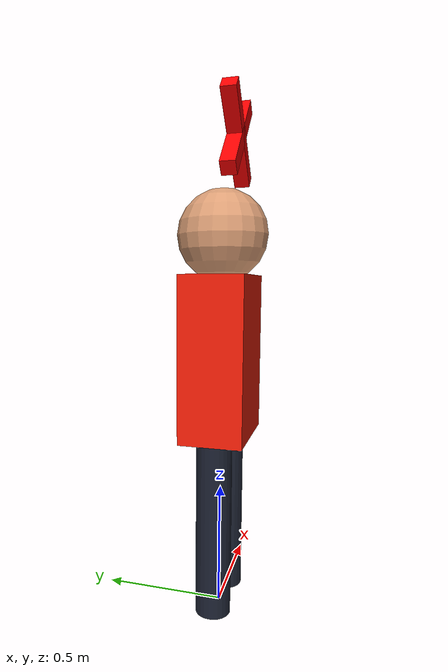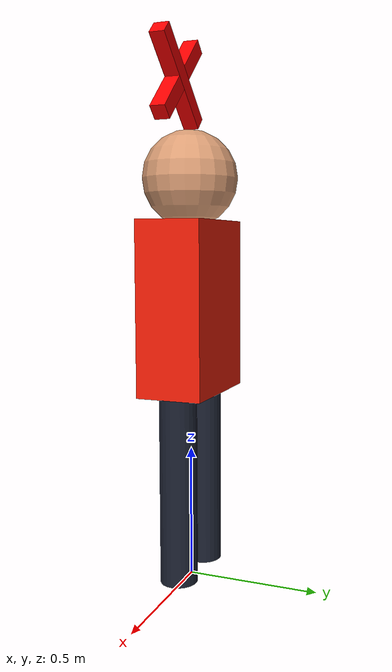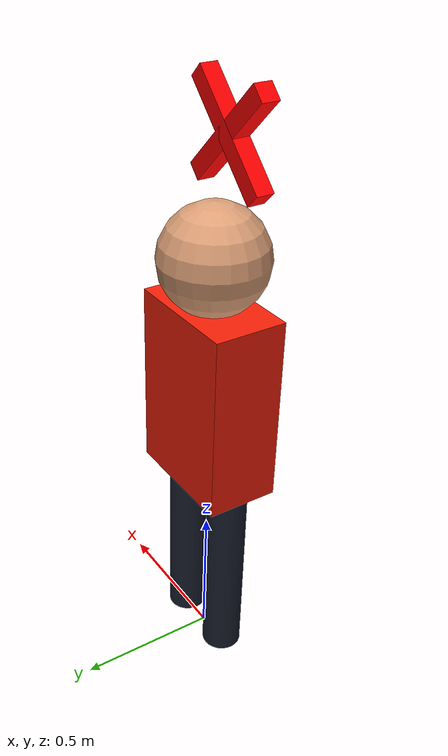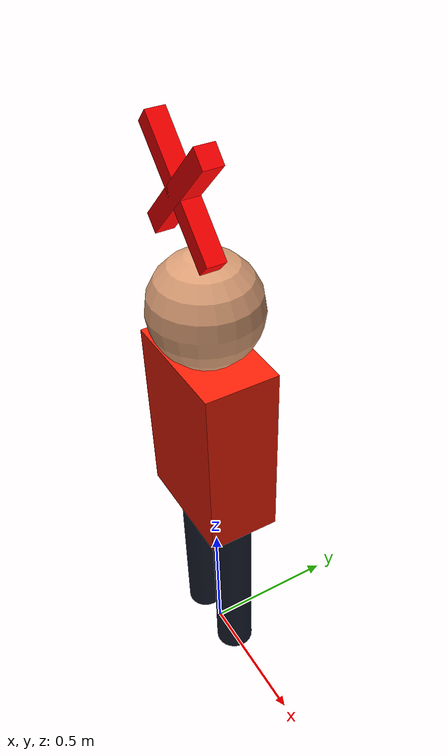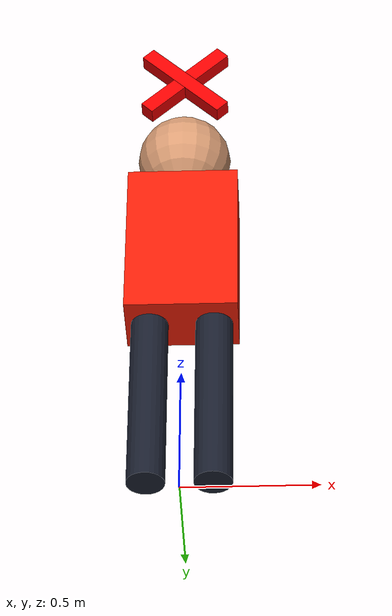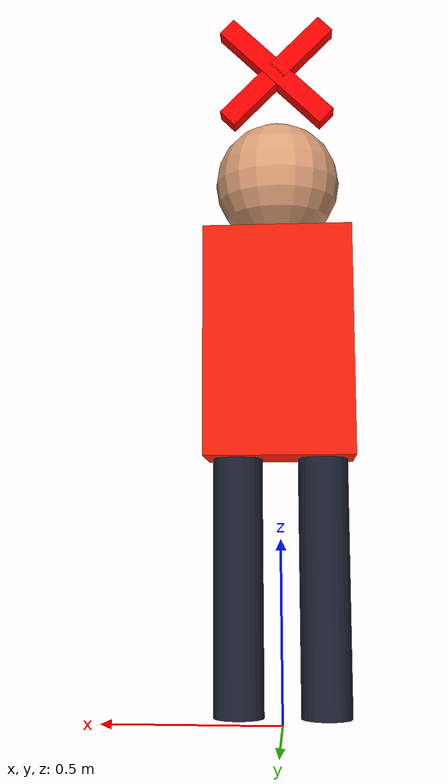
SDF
<?xml version="1.0"?>
<sdf version="1.6">
  <model name="helmet_violation_event">
    <static>true</static>
    <link name="worker_no_helmet">
      <!-- Red body + bare head + red X: helmet violation. -->
      <visual name="torso">
        <pose>0 0 1.05 0 0 0</pose>
        <geometry><box><size>0.42 0.25 0.65</size></box></geometry>
        <material><ambient>0.95 0.12 0.03 1</ambient><diffuse>0.95 0.12 0.03 1</diffuse></material>
      </visual>
      <visual name="head">
        <pose>0 0 1.53 0 0 0</pose>
        <geometry><sphere><radius>0.18</radius></sphere></geometry>
        <material><ambient>0.86 0.62 0.46 1</ambient><diffuse>0.86 0.62 0.46 1</diffuse></material>
      </visual>
      <visual name="left_leg">
        <pose>-0.12 0 0.42 0 0 0</pose>
        <geometry><cylinder><radius>0.07</radius><length>0.8</length></cylinder></geometry>
        <material><ambient>0.1 0.12 0.18 1</ambient><diffuse>0.1 0.12 0.18 1</diffuse></material>
      </visual>
      <visual name="right_leg">
        <pose>0.12 0 0.42 0 0 0</pose>
        <geometry><cylinder><radius>0.07</radius><length>0.8</length></cylinder></geometry>
        <material><ambient>0.1 0.12 0.18 1</ambient><diffuse>0.1 0.12 0.18 1</diffuse></material>
      </visual>
      <visual name="no_helmet_x1">
        <pose>0 -0.05 1.9 0 0.78 0</pose>
        <geometry><box><size>0.42 0.06 0.06</size></box></geometry>
        <material><ambient>1 0 0 1</ambient><diffuse>1 0 0 1</diffuse><emissive>0.6 0 0 1</emissive></material>
      </visual>
      <visual name="no_helmet_x2">
        <pose>0 -0.05 1.9 0 -0.78 0</pose>
        <geometry><box><size>0.42 0.06 0.06</size></box></geometry>
        <material><ambient>1 0 0 1</ambient><diffuse>1 0 0 1</diffuse><emissive>0.6 0 0 1</emissive></material>
      </visual>
    </link>
  </model>
</sdf>
